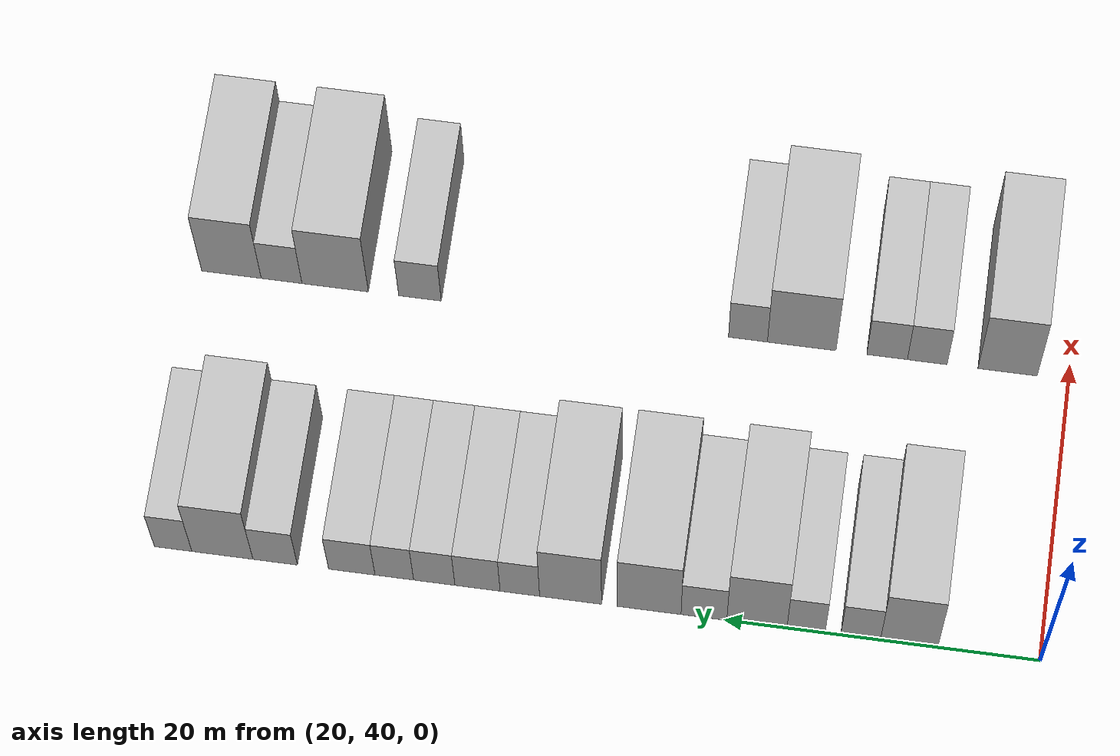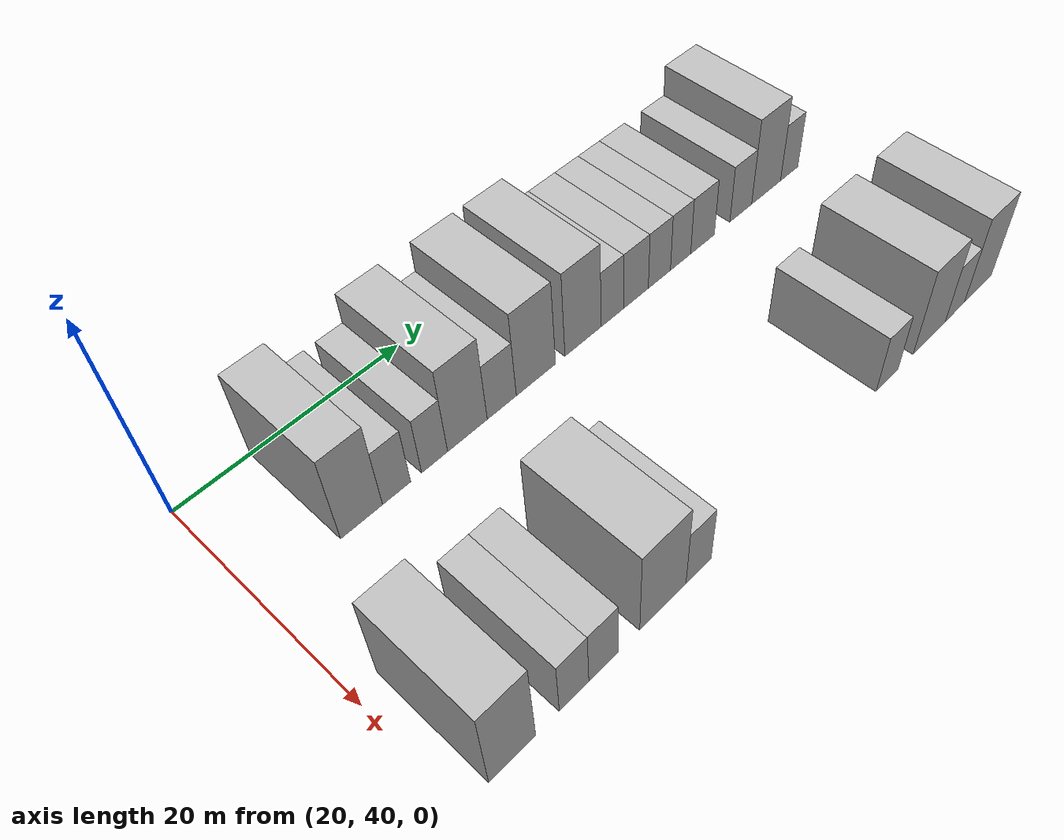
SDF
<sdf version="1.6">
 <world name="default">
  <model name="building_63">
   <static>1</static>
   <pose>25.0000 48.2834 0 0.000000 0.000000 0.000000</pose>
   <link name="link">
    <pose>0 0 4.50 0 0 0</pose>
    <collision name="collision"><geometry><box><size>10.0000 3.6277 9.0000</size></box></geometry></collision>
    <visual name="visual">
     <cast_shadows>0</cast_shadows>
     <geometry><box><size>10.0000 3.6277 9.0000</size></box></geometry>
     <material>
      <script>
       <uri>model://HANNAS_wall/materials/scripts</uri>
       <uri>model://HANNAS_wall/materials/textures</uri>
       <name>vrc/HANNAS_wall</name>
      </script>
     </material>
    </visual>
   </link>
  </model>
  <model name="building_64">
   <static>1</static>
   <pose>25.0000 51.3525 0 0.000000 0.000000 0.000000</pose>
   <link name="link">
    <pose>0 0 3.00 0 0 0</pose>
    <collision name="collision"><geometry><box><size>10.0000 2.5106 6.0000</size></box></geometry></collision>
    <visual name="visual">
     <cast_shadows>0</cast_shadows>
     <geometry><box><size>10.0000 2.5106 6.0000</size></box></geometry>
     <material>
      <script>
       <uri>model://HANNAS_wall/materials/scripts</uri>
       <uri>model://HANNAS_wall/materials/textures</uri>
       <name>vrc/HANNAS_wall</name>
      </script>
     </material>
    </visual>
   </link>
  </model>
  <model name="building_65">
   <static>1</static>
   <pose>25.0000 54.8151 0 0.000000 0.000000 0.000000</pose>
   <link name="link">
    <pose>0 0 3.00 0 0 0</pose>
    <collision name="collision"><geometry><box><size>10.0000 2.4147 6.0000</size></box></geometry></collision>
    <visual name="visual">
     <cast_shadows>0</cast_shadows>
     <geometry><box><size>10.0000 2.4147 6.0000</size></box></geometry>
     <material>
      <script>
       <uri>model://HANNAS_wall/materials/scripts</uri>
       <uri>model://HANNAS_wall/materials/textures</uri>
       <name>vrc/HANNAS_wall</name>
      </script>
     </material>
    </visual>
   </link>
  </model>
  <model name="building_66">
   <static>1</static>
   <pose>25.0000 57.9305 0 0.000000 0.000000 0.000000</pose>
   <link name="link">
    <pose>0 0 4.50 0 0 0</pose>
    <collision name="collision"><geometry><box><size>10.0000 3.8160 9.0000</size></box></geometry></collision>
    <visual name="visual">
     <cast_shadows>0</cast_shadows>
     <geometry><box><size>10.0000 3.8160 9.0000</size></box></geometry>
     <material>
      <script>
       <uri>model://HANNAS_wall/materials/scripts</uri>
       <uri>model://HANNAS_wall/materials/textures</uri>
       <name>vrc/HANNAS_wall</name>
      </script>
     </material>
    </visual>
   </link>
  </model>
  <model name="building_67">
   <static>1</static>
   <pose>25.0000 61.2913 0 0.000000 0.000000 0.000000</pose>
   <link name="link">
    <pose>0 0 3.00 0 0 0</pose>
    <collision name="collision"><geometry><box><size>10.0000 2.9056 6.0000</size></box></geometry></collision>
    <visual name="visual">
     <cast_shadows>0</cast_shadows>
     <geometry><box><size>10.0000 2.9056 6.0000</size></box></geometry>
     <material>
      <script>
       <uri>model://HANNAS_wall/materials/scripts</uri>
       <uri>model://HANNAS_wall/materials/textures</uri>
       <name>vrc/HANNAS_wall</name>
      </script>
     </material>
    </visual>
   </link>
  </model>
  <model name="building_68">
   <static>1</static>
   <pose>25.0000 64.7740 0 0.000000 0.000000 0.000000</pose>
   <link name="link">
    <pose>0 0 4.50 0 0 0</pose>
    <collision name="collision"><geometry><box><size>10.0000 4.0598 9.0000</size></box></geometry></collision>
    <visual name="visual">
     <cast_shadows>0</cast_shadows>
     <geometry><box><size>10.0000 4.0598 9.0000</size></box></geometry>
     <material>
      <script>
       <uri>model://HANNAS_wall/materials/scripts</uri>
       <uri>model://HANNAS_wall/materials/textures</uri>
       <name>vrc/HANNAS_wall</name>
      </script>
     </material>
    </visual>
   </link>
  </model>
  <model name="building_69">
   <static>1</static>
   <pose>25.0000 69.7808 0 0.000000 0.000000 0.000000</pose>
   <link name="link">
    <pose>0 0 4.50 0 0 0</pose>
    <collision name="collision"><geometry><box><size>10.0000 3.9539 9.0000</size></box></geometry></collision>
    <visual name="visual">
     <cast_shadows>0</cast_shadows>
     <geometry><box><size>10.0000 3.9539 9.0000</size></box></geometry>
     <material>
      <script>
       <uri>model://HANNAS_wall/materials/scripts</uri>
       <uri>model://HANNAS_wall/materials/textures</uri>
       <name>vrc/HANNAS_wall</name>
      </script>
     </material>
    </visual>
   </link>
  </model>
  <model name="building_70">
   <static>1</static>
   <pose>25.0000 73.0188 0 0.000000 0.000000 0.000000</pose>
   <link name="link">
    <pose>0 0 3.00 0 0 0</pose>
    <collision name="collision"><geometry><box><size>10.0000 2.5220 6.0000</size></box></geometry></collision>
    <visual name="visual">
     <cast_shadows>0</cast_shadows>
     <geometry><box><size>10.0000 2.5220 6.0000</size></box></geometry>
     <material>
      <script>
       <uri>model://HANNAS_wall/materials/scripts</uri>
       <uri>model://HANNAS_wall/materials/textures</uri>
       <name>vrc/HANNAS_wall</name>
      </script>
     </material>
    </visual>
   </link>
  </model>
  <model name="building_71">
   <static>1</static>
   <pose>25.0000 75.7211 0 0.000000 0.000000 0.000000</pose>
   <link name="link">
    <pose>0 0 3.00 0 0 0</pose>
    <collision name="collision"><geometry><box><size>10.0000 2.8826 6.0000</size></box></geometry></collision>
    <visual name="visual">
     <cast_shadows>0</cast_shadows>
     <geometry><box><size>10.0000 2.8826 6.0000</size></box></geometry>
     <material>
      <script>
       <uri>model://HANNAS_wall/materials/scripts</uri>
       <uri>model://HANNAS_wall/materials/textures</uri>
       <name>vrc/HANNAS_wall</name>
      </script>
     </material>
    </visual>
   </link>
  </model>
  <model name="building_72">
   <static>1</static>
   <pose>25.0000 78.4825 0 0.000000 0.000000 0.000000</pose>
   <link name="link">
    <pose>0 0 3.00 0 0 0</pose>
    <collision name="collision"><geometry><box><size>10.0000 2.6401 6.0000</size></box></geometry></collision>
    <visual name="visual">
     <cast_shadows>0</cast_shadows>
     <geometry><box><size>10.0000 2.6401 6.0000</size></box></geometry>
     <material>
      <script>
       <uri>model://HANNAS_wall/materials/scripts</uri>
       <uri>model://HANNAS_wall/materials/textures</uri>
       <name>vrc/HANNAS_wall</name>
      </script>
     </material>
    </visual>
   </link>
  </model>
  <model name="building_73">
   <static>1</static>
   <pose>25.0000 81.0390 0 0.000000 0.000000 0.000000</pose>
   <link name="link">
    <pose>0 0 3.00 0 0 0</pose>
    <collision name="collision"><geometry><box><size>10.0000 2.4730 6.0000</size></box></geometry></collision>
    <visual name="visual">
     <cast_shadows>0</cast_shadows>
     <geometry><box><size>10.0000 2.4730 6.0000</size></box></geometry>
     <material>
      <script>
       <uri>model://HANNAS_wall/materials/scripts</uri>
       <uri>model://HANNAS_wall/materials/textures</uri>
       <name>vrc/HANNAS_wall</name>
      </script>
     </material>
    </visual>
   </link>
  </model>
  <model name="building_74">
   <static>1</static>
   <pose>25.0000 83.7629 0 0.000000 0.000000 0.000000</pose>
   <link name="link">
    <pose>0 0 3.00 0 0 0</pose>
    <collision name="collision"><geometry><box><size>10.0000 2.9746 6.0000</size></box></geometry></collision>
    <visual name="visual">
     <cast_shadows>0</cast_shadows>
     <geometry><box><size>10.0000 2.9746 6.0000</size></box></geometry>
     <material>
      <script>
       <uri>model://HANNAS_wall/materials/scripts</uri>
       <uri>model://HANNAS_wall/materials/textures</uri>
       <name>vrc/HANNAS_wall</name>
      </script>
     </material>
    </visual>
   </link>
  </model>
  <model name="building_75">
   <static>1</static>
   <pose>25.0000 88.6793 0 0.000000 0.000000 0.000000</pose>
   <link name="link">
    <pose>0 0 3.00 0 0 0</pose>
    <collision name="collision"><geometry><box><size>10.0000 2.8584 6.0000</size></box></geometry></collision>
    <visual name="visual">
     <cast_shadows>0</cast_shadows>
     <geometry><box><size>10.0000 2.8584 6.0000</size></box></geometry>
     <material>
      <script>
       <uri>model://HANNAS_wall/materials/scripts</uri>
       <uri>model://HANNAS_wall/materials/textures</uri>
       <name>vrc/HANNAS_wall</name>
      </script>
     </material>
    </visual>
   </link>
  </model>
  <model name="building_76">
   <static>1</static>
   <pose>25.0000 92.0704 0 0.000000 0.000000 0.000000</pose>
   <link name="link">
    <pose>0 0 4.50 0 0 0</pose>
    <collision name="collision"><geometry><box><size>10.0000 3.9237 9.0000</size></box></geometry></collision>
    <visual name="visual">
     <cast_shadows>0</cast_shadows>
     <geometry><box><size>10.0000 3.9237 9.0000</size></box></geometry>
     <material>
      <script>
       <uri>model://HANNAS_wall/materials/scripts</uri>
       <uri>model://HANNAS_wall/materials/textures</uri>
       <name>vrc/HANNAS_wall</name>
      </script>
     </material>
    </visual>
   </link>
  </model>
  <model name="building_77">
   <static>1</static>
   <pose>25.0000 95.2386 0 0.000000 0.000000 0.000000</pose>
   <link name="link">
    <pose>0 0 3.00 0 0 0</pose>
    <collision name="collision"><geometry><box><size>10.0000 2.4127 6.0000</size></box></geometry></collision>
    <visual name="visual">
     <cast_shadows>0</cast_shadows>
     <geometry><box><size>10.0000 2.4127 6.0000</size></box></geometry>
     <material>
      <script>
       <uri>model://HANNAS_wall/materials/scripts</uri>
       <uri>model://HANNAS_wall/materials/textures</uri>
       <name>vrc/HANNAS_wall</name>
      </script>
     </material>
    </visual>
   </link>
  </model>
  <model name="building_153">
   <static>1</static>
   <pose>44.0000 43.9709 0 0.000000 0.000000 0.000000</pose>
   <link name="link">
    <pose>0 0 4.50 0 0 0</pose>
    <collision name="collision"><geometry><box><size>10.0000 3.8375 9.0000</size></box></geometry></collision>
    <visual name="visual">
     <cast_shadows>0</cast_shadows>
     <geometry><box><size>10.0000 3.8375 9.0000</size></box></geometry>
     <material>
      <script>
       <uri>model://HANNAS_wall/materials/scripts</uri>
       <uri>model://HANNAS_wall/materials/textures</uri>
       <name>vrc/HANNAS_wall</name>
      </script>
     </material>
    </visual>
   </link>
  </model>
  <model name="building_154">
   <static>1</static>
   <pose>44.0000 49.1773 0 0.000000 0.000000 0.000000</pose>
   <link name="link">
    <pose>0 0 3.00 0 0 0</pose>
    <collision name="collision"><geometry><box><size>10.0000 2.5753 6.0000</size></box></geometry></collision>
    <visual name="visual">
     <cast_shadows>0</cast_shadows>
     <geometry><box><size>10.0000 2.5753 6.0000</size></box></geometry>
     <material>
      <script>
       <uri>model://HANNAS_wall/materials/scripts</uri>
       <uri>model://HANNAS_wall/materials/textures</uri>
       <name>vrc/HANNAS_wall</name>
      </script>
     </material>
    </visual>
   </link>
  </model>
  <model name="building_155">
   <static>1</static>
   <pose>44.0000 51.7853 0 0.000000 0.000000 0.000000</pose>
   <link name="link">
    <pose>0 0 3.00 0 0 0</pose>
    <collision name="collision"><geometry><box><size>10.0000 2.6407 6.0000</size></box></geometry></collision>
    <visual name="visual">
     <cast_shadows>0</cast_shadows>
     <geometry><box><size>10.0000 2.6407 6.0000</size></box></geometry>
     <material>
      <script>
       <uri>model://HANNAS_wall/materials/scripts</uri>
       <uri>model://HANNAS_wall/materials/textures</uri>
       <name>vrc/HANNAS_wall</name>
      </script>
     </material>
    </visual>
   </link>
  </model>
  <model name="building_156">
   <static>1</static>
   <pose>44.0000 57.3388 0 0.000000 0.000000 0.000000</pose>
   <link name="link">
    <pose>0 0 4.50 0 0 0</pose>
    <collision name="collision"><geometry><box><size>10.0000 4.4661 9.0000</size></box></geometry></collision>
    <visual name="visual">
     <cast_shadows>0</cast_shadows>
     <geometry><box><size>10.0000 4.4661 9.0000</size></box></geometry>
     <material>
      <script>
       <uri>model://HANNAS_wall/materials/scripts</uri>
       <uri>model://HANNAS_wall/materials/textures</uri>
       <name>vrc/HANNAS_wall</name>
      </script>
     </material>
    </visual>
   </link>
  </model>
  <model name="building_157">
   <static>1</static>
   <pose>44.0000 60.8406 0 0.000000 0.000000 0.000000</pose>
   <link name="link">
    <pose>0 0 3.00 0 0 0</pose>
    <collision name="collision"><geometry><box><size>10.0000 2.5375 6.0000</size></box></geometry></collision>
    <visual name="visual">
     <cast_shadows>0</cast_shadows>
     <geometry><box><size>10.0000 2.5375 6.0000</size></box></geometry>
     <material>
      <script>
       <uri>model://HANNAS_wall/materials/scripts</uri>
       <uri>model://HANNAS_wall/materials/textures</uri>
       <name>vrc/HANNAS_wall</name>
      </script>
     </material>
    </visual>
   </link>
  </model>
  <model name="building_158">
   <static>1</static>
   <pose>44.0000 82.2959 0 0.000000 0.000000 0.000000</pose>
   <link name="link">
    <pose>0 0 3.00 0 0 0</pose>
    <collision name="collision"><geometry><box><size>10.0000 2.7910 6.0000</size></box></geometry></collision>
    <visual name="visual">
     <cast_shadows>0</cast_shadows>
     <geometry><box><size>10.0000 2.7910 6.0000</size></box></geometry>
     <material>
      <script>
       <uri>model://HANNAS_wall/materials/scripts</uri>
       <uri>model://HANNAS_wall/materials/textures</uri>
       <name>vrc/HANNAS_wall</name>
      </script>
     </material>
    </visual>
   </link>
  </model>
  <model name="building_159">
   <static>1</static>
   <pose>44.0000 87.8762 0 0.000000 0.000000 0.000000</pose>
   <link name="link">
    <pose>0 0 4.50 0 0 0</pose>
    <collision name="collision"><geometry><box><size>10.0000 4.3695 9.0000</size></box></geometry></collision>
    <visual name="visual">
     <cast_shadows>0</cast_shadows>
     <geometry><box><size>10.0000 4.3695 9.0000</size></box></geometry>
     <material>
      <script>
       <uri>model://HANNAS_wall/materials/scripts</uri>
       <uri>model://HANNAS_wall/materials/textures</uri>
       <name>vrc/HANNAS_wall</name>
      </script>
     </material>
    </visual>
   </link>
  </model>
  <model name="building_160">
   <static>1</static>
   <pose>44.0000 91.4049 0 0.000000 0.000000 0.000000</pose>
   <link name="link">
    <pose>0 0 3.00 0 0 0</pose>
    <collision name="collision"><geometry><box><size>10.0000 2.6880 6.0000</size></box></geometry></collision>
    <visual name="visual">
     <cast_shadows>0</cast_shadows>
     <geometry><box><size>10.0000 2.6880 6.0000</size></box></geometry>
     <material>
      <script>
       <uri>model://HANNAS_wall/materials/scripts</uri>
       <uri>model://HANNAS_wall/materials/textures</uri>
       <name>vrc/HANNAS_wall</name>
      </script>
     </material>
    </visual>
   </link>
  </model>
  <model name="building_161">
   <static>1</static>
   <pose>44.0000 94.7103 0 0.000000 0.000000 0.000000</pose>
   <link name="link">
    <pose>0 0 4.50 0 0 0</pose>
    <collision name="collision"><geometry><box><size>10.0000 3.9229 9.0000</size></box></geometry></collision>
    <visual name="visual">
     <cast_shadows>0</cast_shadows>
     <geometry><box><size>10.0000 3.9229 9.0000</size></box></geometry>
     <material>
      <script>
       <uri>model://HANNAS_wall/materials/scripts</uri>
       <uri>model://HANNAS_wall/materials/textures</uri>
       <name>vrc/HANNAS_wall</name>
      </script>
     </material>
    </visual>
   </link>
  </model>
 </world>
</sdf>
